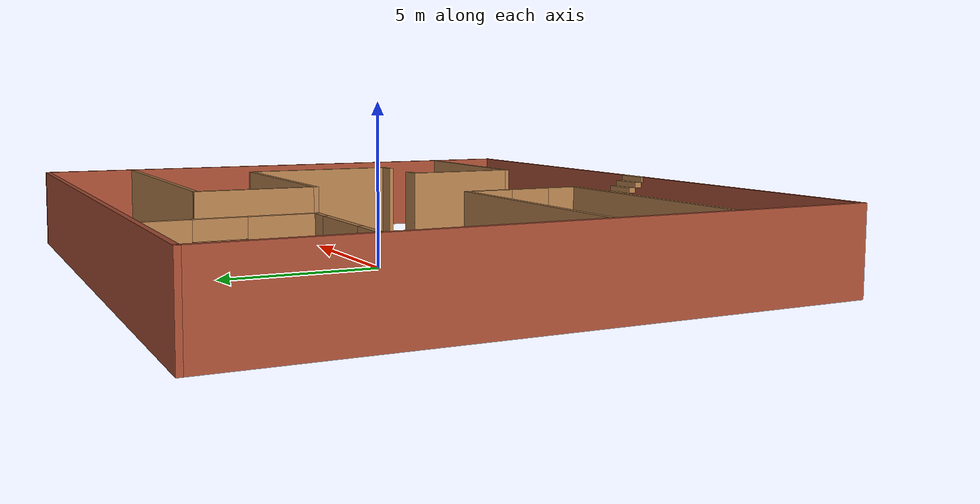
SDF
<?xml version='1.0'?>
<sdf version='1.7'>
  <model name='Building'>
    <pose>0.007631 -0.469352 0 0 -0 0</pose>
    <link name='Stairs_0'>
      <visual name='Stairs_0_Visual_0'>
        <pose>-0.309211 -5.49663 0.083333 0 -0 0</pose>
        <geometry>
          <box>
            <size>1 0.233333 0.166667</size>
          </box>
        </geometry>
        <material>
          <script>
            <uri>file://media/materials/scripts/gazebo.material</uri>
            <name>Gazebo/Wood</name>
          </script>
          <ambient>1 1 1 1</ambient>
        </material>
        <meta>
          <layer>0</layer>
        </meta>
      </visual>
      <collision name='Stairs_0_Collision_0'>
        <geometry>
          <box>
            <size>1 0.233333 0.166667</size>
          </box>
        </geometry>
        <pose>-0.309211 -5.49663 0.083333 0 -0 0</pose>
      </collision>
      <visual name='Stairs_0_Visual_1'>
        <pose>-0.309211 -5.72996 0.25 0 -0 0</pose>
        <geometry>
          <box>
            <size>1 0.233333 0.166667</size>
          </box>
        </geometry>
        <material>
          <script>
            <uri>file://media/materials/scripts/gazebo.material</uri>
            <name>Gazebo/Wood</name>
          </script>
          <ambient>1 1 1 1</ambient>
        </material>
        <meta>
          <layer>0</layer>
        </meta>
      </visual>
      <collision name='Stairs_0_Collision_1'>
        <geometry>
          <box>
            <size>1 0.233333 0.166667</size>
          </box>
        </geometry>
        <pose>-0.309211 -5.72996 0.25 0 -0 0</pose>
      </collision>
      <visual name='Stairs_0_Visual_2'>
        <pose>-0.309211 -5.96329 0.416667 0 -0 0</pose>
        <geometry>
          <box>
            <size>1 0.233333 0.166667</size>
          </box>
        </geometry>
        <material>
          <script>
            <uri>file://media/materials/scripts/gazebo.material</uri>
            <name>Gazebo/Wood</name>
          </script>
          <ambient>1 1 1 1</ambient>
        </material>
        <meta>
          <layer>0</layer>
        </meta>
      </visual>
      <collision name='Stairs_0_Collision_2'>
        <geometry>
          <box>
            <size>1 0.233333 0.166667</size>
          </box>
        </geometry>
        <pose>-0.309211 -5.96329 0.416667 0 -0 0</pose>
      </collision>
      <visual name='Stairs_0_Visual_3'>
        <pose>-0.309211 -6.19663 0.583333 0 -0 0</pose>
        <geometry>
          <box>
            <size>1 0.233333 0.166667</size>
          </box>
        </geometry>
        <material>
          <script>
            <uri>file://media/materials/scripts/gazebo.material</uri>
            <name>Gazebo/Wood</name>
          </script>
          <ambient>1 1 1 1</ambient>
        </material>
        <meta>
          <layer>0</layer>
        </meta>
      </visual>
      <collision name='Stairs_0_Collision_3'>
        <geometry>
          <box>
            <size>1 0.233333 0.166667</size>
          </box>
        </geometry>
        <pose>-0.309211 -6.19663 0.583333 0 -0 0</pose>
      </collision>
      <visual name='Stairs_0_Visual_4'>
        <pose>-0.309211 -6.42996 0.75 0 -0 0</pose>
        <geometry>
          <box>
            <size>1 0.233333 0.166667</size>
          </box>
        </geometry>
        <material>
          <script>
            <uri>file://media/materials/scripts/gazebo.material</uri>
            <name>Gazebo/Wood</name>
          </script>
          <ambient>1 1 1 1</ambient>
        </material>
        <meta>
          <layer>0</layer>
        </meta>
      </visual>
      <collision name='Stairs_0_Collision_4'>
        <geometry>
          <box>
            <size>1 0.233333 0.166667</size>
          </box>
        </geometry>
        <pose>-0.309211 -6.42996 0.75 0 -0 0</pose>
      </collision>
      <visual name='Stairs_0_Visual_5'>
        <pose>-0.309211 -6.66329 0.916667 0 -0 0</pose>
        <geometry>
          <box>
            <size>1 0.233333 0.166667</size>
          </box>
        </geometry>
        <material>
          <script>
            <uri>file://media/materials/scripts/gazebo.material</uri>
            <name>Gazebo/Wood</name>
          </script>
          <ambient>1 1 1 1</ambient>
        </material>
        <meta>
          <layer>0</layer>
        </meta>
      </visual>
      <collision name='Stairs_0_Collision_5'>
        <geometry>
          <box>
            <size>1 0.233333 0.166667</size>
          </box>
        </geometry>
        <pose>-0.309211 -6.66329 0.916667 0 -0 0</pose>
      </collision>
      <visual name='Stairs_0_Visual_6'>
        <pose>-0.309211 -6.89663 1.08333 0 -0 0</pose>
        <geometry>
          <box>
            <size>1 0.233333 0.166667</size>
          </box>
        </geometry>
        <material>
          <script>
            <uri>file://media/materials/scripts/gazebo.material</uri>
            <name>Gazebo/Wood</name>
          </script>
          <ambient>1 1 1 1</ambient>
        </material>
        <meta>
          <layer>0</layer>
        </meta>
      </visual>
      <collision name='Stairs_0_Collision_6'>
        <geometry>
          <box>
            <size>1 0.233333 0.166667</size>
          </box>
        </geometry>
        <pose>-0.309211 -6.89663 1.08333 0 -0 0</pose>
      </collision>
      <visual name='Stairs_0_Visual_7'>
        <pose>-0.309211 -7.12996 1.25 0 -0 0</pose>
        <geometry>
          <box>
            <size>1 0.233333 0.166667</size>
          </box>
        </geometry>
        <material>
          <script>
            <uri>file://media/materials/scripts/gazebo.material</uri>
            <name>Gazebo/Wood</name>
          </script>
          <ambient>1 1 1 1</ambient>
        </material>
        <meta>
          <layer>0</layer>
        </meta>
      </visual>
      <collision name='Stairs_0_Collision_7'>
        <geometry>
          <box>
            <size>1 0.233333 0.166667</size>
          </box>
        </geometry>
        <pose>-0.309211 -7.12996 1.25 0 -0 0</pose>
      </collision>
      <visual name='Stairs_0_Visual_8'>
        <pose>-0.309211 -7.36329 1.41667 0 -0 0</pose>
        <geometry>
          <box>
            <size>1 0.233333 0.166667</size>
          </box>
        </geometry>
        <material>
          <script>
            <uri>file://media/materials/scripts/gazebo.material</uri>
            <name>Gazebo/Wood</name>
          </script>
          <ambient>1 1 1 1</ambient>
        </material>
        <meta>
          <layer>0</layer>
        </meta>
      </visual>
      <collision name='Stairs_0_Collision_8'>
        <geometry>
          <box>
            <size>1 0.233333 0.166667</size>
          </box>
        </geometry>
        <pose>-0.309211 -7.36329 1.41667 0 -0 0</pose>
      </collision>
      <visual name='Stairs_0_Visual_9'>
        <pose>-0.309211 -7.59663 1.58333 0 -0 0</pose>
        <geometry>
          <box>
            <size>1 0.233333 0.166667</size>
          </box>
        </geometry>
        <material>
          <script>
            <uri>file://media/materials/scripts/gazebo.material</uri>
            <name>Gazebo/Wood</name>
          </script>
          <ambient>1 1 1 1</ambient>
        </material>
        <meta>
          <layer>0</layer>
        </meta>
      </visual>
      <collision name='Stairs_0_Collision_9'>
        <geometry>
          <box>
            <size>1 0.233333 0.166667</size>
          </box>
        </geometry>
        <pose>-0.309211 -7.59663 1.58333 0 -0 0</pose>
      </collision>
      <visual name='Stairs_0_Visual_10'>
        <pose>-0.309211 -7.82996 1.75 0 -0 0</pose>
        <geometry>
          <box>
            <size>1 0.233333 0.166667</size>
          </box>
        </geometry>
        <material>
          <script>
            <uri>file://media/materials/scripts/gazebo.material</uri>
            <name>Gazebo/Wood</name>
          </script>
          <ambient>1 1 1 1</ambient>
        </material>
        <meta>
          <layer>0</layer>
        </meta>
      </visual>
      <collision name='Stairs_0_Collision_10'>
        <geometry>
          <box>
            <size>1 0.233333 0.166667</size>
          </box>
        </geometry>
        <pose>-0.309211 -7.82996 1.75 0 -0 0</pose>
      </collision>
      <visual name='Stairs_0_Visual_11'>
        <pose>-0.309211 -8.06329 1.91667 0 -0 0</pose>
        <geometry>
          <box>
            <size>1 0.233333 0.166667</size>
          </box>
        </geometry>
        <material>
          <script>
            <uri>file://media/materials/scripts/gazebo.material</uri>
            <name>Gazebo/Wood</name>
          </script>
          <ambient>1 1 1 1</ambient>
        </material>
        <meta>
          <layer>0</layer>
        </meta>
      </visual>
      <collision name='Stairs_0_Collision_11'>
        <geometry>
          <box>
            <size>1 0.233333 0.166667</size>
          </box>
        </geometry>
        <pose>-0.309211 -8.06329 1.91667 0 -0 0</pose>
      </collision>
      <visual name='Stairs_0_Visual_12'>
        <pose>-0.309211 -8.29663 2.08333 0 -0 0</pose>
        <geometry>
          <box>
            <size>1 0.233333 0.166667</size>
          </box>
        </geometry>
        <material>
          <script>
            <uri>file://media/materials/scripts/gazebo.material</uri>
            <name>Gazebo/Wood</name>
          </script>
          <ambient>1 1 1 1</ambient>
        </material>
        <meta>
          <layer>0</layer>
        </meta>
      </visual>
      <collision name='Stairs_0_Collision_12'>
        <geometry>
          <box>
            <size>1 0.233333 0.166667</size>
          </box>
        </geometry>
        <pose>-0.309211 -8.29663 2.08333 0 -0 0</pose>
      </collision>
      <visual name='Stairs_0_Visual_13'>
        <pose>-0.309211 -8.52996 2.25 0 -0 0</pose>
        <geometry>
          <box>
            <size>1 0.233333 0.166667</size>
          </box>
        </geometry>
        <material>
          <script>
            <uri>file://media/materials/scripts/gazebo.material</uri>
            <name>Gazebo/Wood</name>
          </script>
          <ambient>1 1 1 1</ambient>
        </material>
        <meta>
          <layer>0</layer>
        </meta>
      </visual>
      <collision name='Stairs_0_Collision_13'>
        <geometry>
          <box>
            <size>1 0.233333 0.166667</size>
          </box>
        </geometry>
        <pose>-0.309211 -8.52996 2.25 0 -0 0</pose>
      </collision>
      <visual name='Stairs_0_Visual_14'>
        <pose>-0.309211 -8.76329 2.41667 0 -0 0</pose>
        <geometry>
          <box>
            <size>1 0.233333 0.166667</size>
          </box>
        </geometry>
        <material>
          <script>
            <uri>file://media/materials/scripts/gazebo.material</uri>
            <name>Gazebo/Wood</name>
          </script>
          <ambient>1 1 1 1</ambient>
        </material>
        <meta>
          <layer>0</layer>
        </meta>
      </visual>
      <collision name='Stairs_0_Collision_14'>
        <geometry>
          <box>
            <size>1 0.233333 0.166667</size>
          </box>
        </geometry>
        <pose>-0.309211 -8.76329 2.41667 0 -0 0</pose>
      </collision>
    </link>
    <link name='Wall_10'>
      <collision name='Wall_10_Collision'>
        <geometry>
          <box>
            <size>17.75 0.15 2.5</size>
          </box>
        </geometry>
        <pose>0 0 1.25 0 -0 0</pose>
      </collision>
      <visual name='Wall_10_Visual'>
        <pose>0 0 1.25 0 -0 0</pose>
        <geometry>
          <box>
            <size>17.75 0.15 2.5</size>
          </box>
        </geometry>
        <material>
          <script>
            <uri>file://media/materials/scripts/gazebo.material</uri>
            <name>Gazebo/Bricks</name>
          </script>
          <ambient>1 1 1 1</ambient>
        </material>
        <meta>
          <layer>0</layer>
        </meta>
      </visual>
      <pose>9.55 0.004959 0 0 -0 1.5708</pose>
    </link>
    <link name='Wall_11'>
      <collision name='Wall_11_Collision'>
        <geometry>
          <box>
            <size>19.25 0.15 2.5</size>
          </box>
        </geometry>
        <pose>0 0 1.25 0 -0 0</pose>
      </collision>
      <visual name='Wall_11_Visual'>
        <pose>0 0 1.25 0 -0 0</pose>
        <geometry>
          <box>
            <size>19.25 0.15 2.5</size>
          </box>
        </geometry>
        <material>
          <script>
            <uri>file://media/materials/scripts/gazebo.material</uri>
            <name>Gazebo/Bricks</name>
          </script>
          <ambient>1 1 1 1</ambient>
        </material>
        <meta>
          <layer>0</layer>
        </meta>
      </visual>
      <pose>-0 8.80496 0 0 -0 3.14159</pose>
    </link>
    <link name='Wall_14'>
      <pose>-5.87223 6.68557 0 0 -0 -1.5708</pose>
      <visual name='Wall_14_Visual_0'>
        <pose>-1.52124 0 1.25 0 -0 0</pose>
        <geometry>
          <box>
            <size>1.20753 0.15 2.5</size>
          </box>
        </geometry>
        <material>
          <script>
            <uri>file://media/materials/scripts/gazebo.material</uri>
            <name>Gazebo/Wood</name>
          </script>
          <ambient>1 1 1 1</ambient>
        </material>
        <meta>
          <layer>0</layer>
        </meta>
      </visual>
      <collision name='Wall_14_Collision_0'>
        <geometry>
          <box>
            <size>1.20753 0.15 2.5</size>
          </box>
        </geometry>
        <pose>-1.52124 0 1.25 0 -0 0</pose>
      </collision>
      <visual name='Wall_14_Visual_1'>
        <pose>1.24351 0 1.25 0 -0 0</pose>
        <geometry>
          <box>
            <size>1.76297 0.15 2.5</size>
          </box>
        </geometry>
        <material>
          <script>
            <uri>file://media/materials/scripts/gazebo.material</uri>
            <name>Gazebo/Wood</name>
          </script>
          <ambient>1 1 1 1</ambient>
        </material>
        <meta>
          <layer>0</layer>
        </meta>
      </visual>
      <collision name='Wall_14_Collision_1'>
        <geometry>
          <box>
            <size>1.76297 0.15 2.5</size>
          </box>
        </geometry>
        <pose>1.24351 0 1.25 0 -0 0</pose>
      </collision>
      <visual name='Wall_14_Visual_2'>
        <pose>-0.277724 0 2.25 0 -0 0</pose>
        <geometry>
          <box>
            <size>1.2795 0.15 0.5</size>
          </box>
        </geometry>
        <material>
          <script>
            <uri>file://media/materials/scripts/gazebo.material</uri>
            <name>Gazebo/Wood</name>
          </script>
          <ambient>1 1 1 1</ambient>
        </material>
        <meta>
          <layer>0</layer>
        </meta>
      </visual>
      <collision name='Wall_14_Collision_2'>
        <geometry>
          <box>
            <size>1.2795 0.15 0.5</size>
          </box>
        </geometry>
        <pose>-0.277724 0 2.25 0 -0 0</pose>
      </collision>
    </link>
    <link name='Wall_15'>
      <pose>-7.67223 4.63557 0 0 -0 3.14159</pose>
      <visual name='Wall_15_Visual_0'>
        <pose>-1.54151 0 1.25 0 -0 0</pose>
        <geometry>
          <box>
            <size>0.666977 0.15 2.5</size>
          </box>
        </geometry>
        <material>
          <script>
            <uri>file://media/materials/scripts/gazebo.material</uri>
            <name>Gazebo/Wood</name>
          </script>
          <ambient>1 1 1 1</ambient>
        </material>
        <meta>
          <layer>0</layer>
        </meta>
      </visual>
      <collision name='Wall_15_Collision_0'>
        <geometry>
          <box>
            <size>0.666977 0.15 2.5</size>
          </box>
        </geometry>
        <pose>-1.54151 0 1.25 0 -0 0</pose>
      </collision>
      <visual name='Wall_15_Visual_1'>
        <pose>0.333489 0 0.25 0 -0 0</pose>
        <geometry>
          <box>
            <size>3.08302 0.15 0.5</size>
          </box>
        </geometry>
        <material>
          <script>
            <uri>file://media/materials/scripts/gazebo.material</uri>
            <name>Gazebo/Wood</name>
          </script>
          <ambient>1 1 1 1</ambient>
        </material>
        <meta>
          <layer>0</layer>
        </meta>
      </visual>
      <collision name='Wall_15_Collision_1'>
        <geometry>
          <box>
            <size>3.08302 0.15 0.5</size>
          </box>
        </geometry>
        <pose>0.333489 0 0.25 0 -0 0</pose>
      </collision>
      <visual name='Wall_15_Visual_2'>
        <pose>1.33724 0 1.5 0 -0 0</pose>
        <geometry>
          <box>
            <size>1.07552 0.15 2</size>
          </box>
        </geometry>
        <material>
          <script>
            <uri>file://media/materials/scripts/gazebo.material</uri>
            <name>Gazebo/Wood</name>
          </script>
          <ambient>1 1 1 1</ambient>
        </material>
        <meta>
          <layer>0</layer>
        </meta>
      </visual>
      <collision name='Wall_15_Collision_2'>
        <geometry>
          <box>
            <size>1.07552 0.15 2</size>
          </box>
        </geometry>
        <pose>1.33724 0 1.5 0 -0 0</pose>
      </collision>
      <visual name='Wall_15_Visual_3'>
        <pose>-0.204273 0 1.9 0 -0 0</pose>
        <geometry>
          <box>
            <size>2.0075 0.15 1.2</size>
          </box>
        </geometry>
        <material>
          <script>
            <uri>file://media/materials/scripts/gazebo.material</uri>
            <name>Gazebo/Wood</name>
          </script>
          <ambient>1 1 1 1</ambient>
        </material>
        <meta>
          <layer>0</layer>
        </meta>
      </visual>
      <collision name='Wall_15_Collision_3'>
        <geometry>
          <box>
            <size>2.0075 0.15 1.2</size>
          </box>
        </geometry>
        <pose>-0.204273 0 1.9 0 -0 0</pose>
      </collision>
    </link>
    <link name='Wall_17'>
      <collision name='Wall_17_Collision'>
        <geometry>
          <box>
            <size>7 0.15 2.5</size>
          </box>
        </geometry>
        <pose>0 0 1.25 0 -0 0</pose>
      </collision>
      <visual name='Wall_17_Visual'>
        <pose>0 0 1.25 0 -0 0</pose>
        <geometry>
          <box>
            <size>7 0.15 2.5</size>
          </box>
        </geometry>
        <material>
          <script>
            <uri>file://media/materials/scripts/gazebo.material</uri>
            <name>Gazebo/Wood</name>
          </script>
          <ambient>1 1 1 1</ambient>
        </material>
        <meta>
          <layer>0</layer>
        </meta>
      </visual>
      <pose>-6.125 -1.11807 0 0 -0 0</pose>
    </link>
    <link name='Wall_18'>
      <pose>-2.7 -2.91807 0 0 -0 -1.5708</pose>
      <visual name='Wall_18_Visual_0'>
        <pose>-1.13518 0 1.25 0 -0 0</pose>
        <geometry>
          <box>
            <size>1.47964 0.15 2.5</size>
          </box>
        </geometry>
        <material>
          <script>
            <uri>file://media/materials/scripts/gazebo.material</uri>
            <name>Gazebo/Wood</name>
          </script>
          <ambient>1 1 1 1</ambient>
        </material>
        <meta>
          <layer>0</layer>
        </meta>
      </visual>
      <collision name='Wall_18_Collision_0'>
        <geometry>
          <box>
            <size>1.47964 0.15 2.5</size>
          </box>
        </geometry>
        <pose>-1.13518 0 1.25 0 -0 0</pose>
      </collision>
      <visual name='Wall_18_Visual_1'>
        <pose>1.36232 0 1.25 0 -0 0</pose>
        <geometry>
          <box>
            <size>1.02536 0.15 2.5</size>
          </box>
        </geometry>
        <material>
          <script>
            <uri>file://media/materials/scripts/gazebo.material</uri>
            <name>Gazebo/Wood</name>
          </script>
          <ambient>1 1 1 1</ambient>
        </material>
        <meta>
          <layer>0</layer>
        </meta>
      </visual>
      <collision name='Wall_18_Collision_1'>
        <geometry>
          <box>
            <size>1.02536 0.15 2.5</size>
          </box>
        </geometry>
        <pose>1.36232 0 1.25 0 -0 0</pose>
      </collision>
      <visual name='Wall_18_Visual_2'>
        <pose>0.227138 0 2.25 0 -0 0</pose>
        <geometry>
          <box>
            <size>1.245 0.15 0.5</size>
          </box>
        </geometry>
        <material>
          <script>
            <uri>file://media/materials/scripts/gazebo.material</uri>
            <name>Gazebo/Wood</name>
          </script>
          <ambient>1 1 1 1</ambient>
        </material>
        <meta>
          <layer>0</layer>
        </meta>
      </visual>
      <collision name='Wall_18_Collision_2'>
        <geometry>
          <box>
            <size>1.245 0.15 0.5</size>
          </box>
        </geometry>
        <pose>0.227138 0 2.25 0 -0 0</pose>
      </collision>
    </link>
    <link name='Wall_19'>
      <collision name='Wall_19_Collision'>
        <geometry>
          <box>
            <size>7 0.15 2.5</size>
          </box>
        </geometry>
        <pose>0 0 1.25 0 -0 0</pose>
      </collision>
      <visual name='Wall_19_Visual'>
        <pose>0 0 1.25 0 -0 0</pose>
        <geometry>
          <box>
            <size>7 0.15 2.5</size>
          </box>
        </geometry>
        <material>
          <script>
            <uri>file://media/materials/scripts/gazebo.material</uri>
            <name>Gazebo/Wood</name>
          </script>
          <ambient>1 1 1 1</ambient>
        </material>
        <meta>
          <layer>0</layer>
        </meta>
      </visual>
      <pose>-6.125 -4.71807 0 0 -0 3.14159</pose>
    </link>
    <link name='Wall_21'>
      <collision name='Wall_21_Collision'>
        <geometry>
          <box>
            <size>5.75 0.15 2.5</size>
          </box>
        </geometry>
        <pose>0 0 1.25 0 -0 0</pose>
      </collision>
      <visual name='Wall_21_Visual'>
        <pose>0 0 1.25 0 -0 0</pose>
        <geometry>
          <box>
            <size>5.75 0.15 2.5</size>
          </box>
        </geometry>
        <material>
          <script>
            <uri>file://media/materials/scripts/gazebo.material</uri>
            <name>Gazebo/Wood</name>
          </script>
          <ambient>1 1 1 1</ambient>
        </material>
        <meta>
          <layer>0</layer>
        </meta>
      </visual>
      <pose>6.73275 -6.32246 0 0 -0 3.14159</pose>
    </link>
    <link name='Wall_22'>
      <collision name='Wall_22_Collision'>
        <geometry>
          <box>
            <size>3.75 0.15 2.5</size>
          </box>
        </geometry>
        <pose>0 0 1.25 0 -0 0</pose>
      </collision>
      <visual name='Wall_22_Visual'>
        <pose>0 0 1.25 0 -0 0</pose>
        <geometry>
          <box>
            <size>3.75 0.15 2.5</size>
          </box>
        </geometry>
        <material>
          <script>
            <uri>file://media/materials/scripts/gazebo.material</uri>
            <name>Gazebo/Wood</name>
          </script>
          <ambient>1 1 1 1</ambient>
        </material>
        <meta>
          <layer>0</layer>
        </meta>
      </visual>
      <pose>3.93275 -4.52246 0 0 -0 1.5708</pose>
    </link>
    <link name='Wall_27'>
      <collision name='Wall_27_Collision'>
        <geometry>
          <box>
            <size>0.75 0.15 2.5</size>
          </box>
        </geometry>
        <pose>0 0 1.25 0 -0 0</pose>
      </collision>
      <visual name='Wall_27_Visual'>
        <pose>0 0 1.25 0 -0 0</pose>
        <geometry>
          <box>
            <size>0.75 0.15 2.5</size>
          </box>
        </geometry>
        <material>
          <script>
            <uri>file://media/materials/scripts/gazebo.material</uri>
            <name>Gazebo/Wood</name>
          </script>
          <ambient>1 1 1 1</ambient>
        </material>
        <meta>
          <layer>0</layer>
        </meta>
      </visual>
      <pose>4.23275 -2.72246 0 0 -0 0</pose>
    </link>
    <link name='Wall_29'>
      <collision name='Wall_29_Collision'>
        <geometry>
          <box>
            <size>0.75 0.15 2.5</size>
          </box>
        </geometry>
        <pose>0 0 1.25 0 -0 0</pose>
      </collision>
      <visual name='Wall_29_Visual'>
        <pose>0 0 1.25 0 -0 0</pose>
        <geometry>
          <box>
            <size>0.75 0.15 2.5</size>
          </box>
        </geometry>
        <material>
          <script>
            <uri>file://media/materials/scripts/gazebo.material</uri>
            <name>Gazebo/Wood</name>
          </script>
          <ambient>1 1 1 1</ambient>
        </material>
        <meta>
          <layer>0</layer>
        </meta>
      </visual>
      <pose>6.54579 -2.81746 0 0 -0 0</pose>
    </link>
    <link name='Wall_30'>
      <collision name='Wall_30_Collision'>
        <geometry>
          <box>
            <size>5.25 0.15 2.5</size>
          </box>
        </geometry>
        <pose>0 0 1.25 0 -0 0</pose>
      </collision>
      <visual name='Wall_30_Visual'>
        <pose>0 0 1.25 0 -0 0</pose>
        <geometry>
          <box>
            <size>5.25 0.15 2.5</size>
          </box>
        </geometry>
        <material>
          <script>
            <uri>file://media/materials/scripts/gazebo.material</uri>
            <name>Gazebo/Wood</name>
          </script>
          <ambient>1 1 1 1</ambient>
        </material>
        <meta>
          <layer>0</layer>
        </meta>
      </visual>
      <pose>6.84579 -0.267459 0 0 -0 1.5708</pose>
    </link>
    <link name='Wall_31'>
      <collision name='Wall_31_Collision'>
        <geometry>
          <box>
            <size>6.5 0.15 2.5</size>
          </box>
        </geometry>
        <pose>0 0 1.25 0 -0 0</pose>
      </collision>
      <visual name='Wall_31_Visual'>
        <pose>0 0 1.25 0 -0 0</pose>
        <geometry>
          <box>
            <size>6.5 0.15 2.5</size>
          </box>
        </geometry>
        <material>
          <script>
            <uri>file://media/materials/scripts/gazebo.material</uri>
            <name>Gazebo/Wood</name>
          </script>
          <ambient>1 1 1 1</ambient>
        </material>
        <meta>
          <layer>0</layer>
        </meta>
      </visual>
      <pose>3.67079 2.28254 0 0 -0 3.14159</pose>
    </link>
    <link name='Wall_32'>
      <collision name='Wall_32_Collision'>
        <geometry>
          <box>
            <size>3.75 0.15 2.5</size>
          </box>
        </geometry>
        <pose>0 0 1.25 0 -0 0</pose>
      </collision>
      <visual name='Wall_32_Visual'>
        <pose>0 0 1.25 0 -0 0</pose>
        <geometry>
          <box>
            <size>3.75 0.15 2.5</size>
          </box>
        </geometry>
        <material>
          <script>
            <uri>file://media/materials/scripts/gazebo.material</uri>
            <name>Gazebo/Wood</name>
          </script>
          <ambient>1 1 1 1</ambient>
        </material>
        <meta>
          <layer>0</layer>
        </meta>
      </visual>
      <pose>0.495789 4.08254 0 0 -0 1.5708</pose>
    </link>
    <link name='Wall_33'>
      <collision name='Wall_33_Collision'>
        <geometry>
          <box>
            <size>9 0.15 2.5</size>
          </box>
        </geometry>
        <pose>0 0 1.25 0 -0 0</pose>
      </collision>
      <visual name='Wall_33_Visual'>
        <pose>0 0 1.25 0 -0 0</pose>
        <geometry>
          <box>
            <size>9 0.15 2.5</size>
          </box>
        </geometry>
        <material>
          <script>
            <uri>file://media/materials/scripts/gazebo.material</uri>
            <name>Gazebo/Wood</name>
          </script>
          <ambient>1 1 1 1</ambient>
        </material>
        <meta>
          <layer>0</layer>
        </meta>
      </visual>
      <pose>4.92079 5.88254 0 0 -0 0</pose>
    </link>
    <link name='Wall_8'>
      <collision name='Wall_8_Collision'>
        <geometry>
          <box>
            <size>17.75 0.15 2.5</size>
          </box>
        </geometry>
        <pose>0 0 1.25 0 -0 0</pose>
      </collision>
      <visual name='Wall_8_Visual'>
        <pose>0 0 1.25 0 -0 0</pose>
        <geometry>
          <box>
            <size>17.75 0.15 2.5</size>
          </box>
        </geometry>
        <material>
          <script>
            <uri>file://media/materials/scripts/gazebo.material</uri>
            <name>Gazebo/Bricks</name>
          </script>
          <ambient>1 1 1 1</ambient>
        </material>
        <meta>
          <layer>0</layer>
        </meta>
      </visual>
      <pose>-9.55 0.004959 0 0 -0 -1.5708</pose>
    </link>
    <link name='Wall_9'>
      <collision name='Wall_9_Collision'>
        <geometry>
          <box>
            <size>19.25 0.15 2.5</size>
          </box>
        </geometry>
        <pose>0 0 1.25 0 -0 0</pose>
      </collision>
      <visual name='Wall_9_Visual'>
        <pose>0 0 1.25 0 -0 0</pose>
        <geometry>
          <box>
            <size>19.25 0.15 2.5</size>
          </box>
        </geometry>
        <material>
          <script>
            <uri>file://media/materials/scripts/gazebo.material</uri>
            <name>Gazebo/Bricks</name>
          </script>
          <ambient>1 1 1 1</ambient>
        </material>
        <meta>
          <layer>0</layer>
        </meta>
      </visual>
      <pose>-0 -8.79504 0 0 -0 0</pose>
    </link>
    <static>1</static>
  </model>
</sdf>
